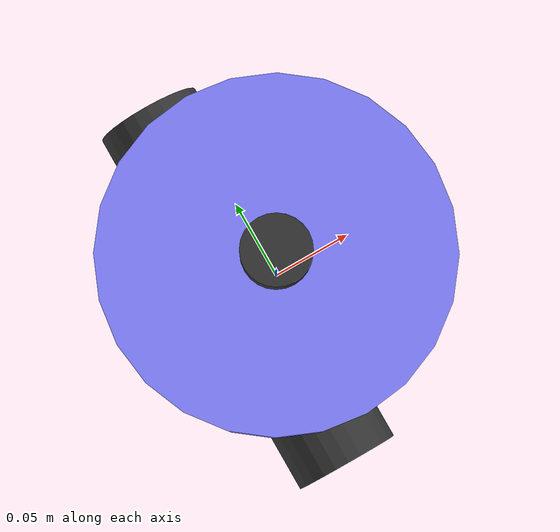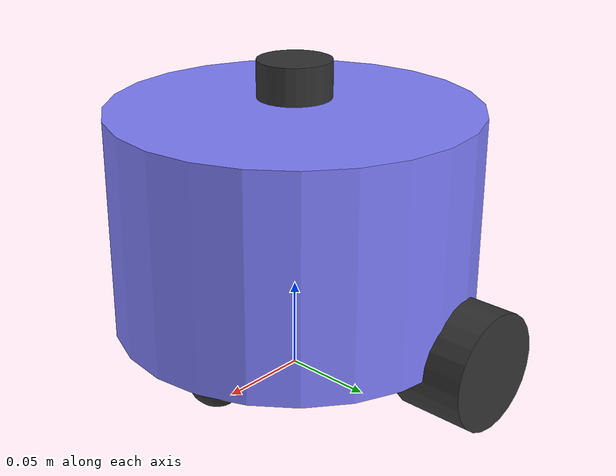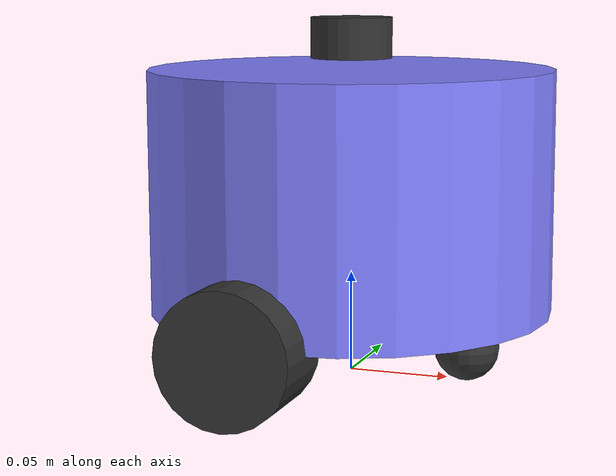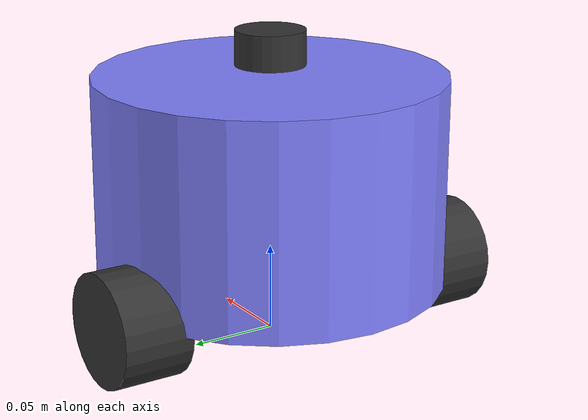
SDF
<?xml version="1.0" ?>
<sdf version="1.9">
  <model name='amazebot'>

  	<!-- Robot Footprint -->
  	<link name="base_footprint">
      <pose>0.0 0.0 0.0 0 0 0</pose>
    </link>

		<!-- base link -->
    <link name='base_link'>
      <pose>0.0 0.0 0.092 0 -0 0</pose>
      <inertial>
        <mass>0.2</mass>
        <inertia>
          <ixx>0.0122666</ixx>
          <ixy>0</ixy>
          <ixz>0</ixz>
          <iyy>0.0122666</iyy>
          <iyz>0</iyz>
          <izz>0.02</izz>
      	</inertia>
      </inertial>
      <visual name='visual_basic_link'>
        <geometry>
          <cylinder>
						<length>0.12</length>
						<radius>0.10</radius>
					</cylinder>
        </geometry>
        <material>
          <ambient>0.5 0.5 1.0 1</ambient>
          <diffuse>0.5 0.5 1.0 1</diffuse>
          <specular>0.0 0.0 1.0 1</specular>
        </material>
      </visual>
      <collision name='collision_basic_link'>
        <geometry>
					<cylinder>
						<length>0.12</length>
						<radius>0.10</radius>
					</cylinder>
        </geometry>
      </collision>
    </link>

		<!-- left wheel link -->
    <link name='left_wheel_link'>
      <pose>-0.02 0.10 0.032 -1.5707963267948966 0 0</pose>
      <inertial>
        <mass>0.2</mass>
        <inertia>
          <ixx>0.000190416666667</ixx>
          <ixy>0</ixy>
          <ixz>0</ixz>
          <iyy>0.0001904</iyy>
          <iyz>0</iyz>
          <izz>0.00036</izz>
        </inertia>
      </inertial>
      <visual name='visual_left_wheel_link'>
        <geometry>
					<cylinder>
						<length>0.04</length>
						<radius>0.032</radius>
					</cylinder>
        </geometry>
        <material>
          <ambient>0.2 0.2 0.2 1</ambient>
          <diffuse>0.2 0.2 0.2 1</diffuse>
          <specular>0.2 0.2 0.2 1</specular>
        </material>
      </visual>
      <collision name='collision_left_wheel_link'>
        <geometry>
					<cylinder>
						<length>0.04</length>
						<radius>0.032</radius>
					</cylinder>
        </geometry>
      </collision>
    </link>

		<!-- right wheel link -->
    <link name='right_wheel_link'>
      <pose>-0.02 -0.10 0.032 -1.5707963267948966 0 0</pose>
      <inertial>
        <mass>0.2</mass>
        <inertia>
          <ixx>0.000190416666667</ixx>
          <ixy>0</ixy>
          <ixz>0</ixz>
          <iyy>0.0001904</iyy>
          <iyz>0</iyz>
          <izz>0.00036</izz>
        </inertia>
      </inertial>
      <visual name='visual_right_wheel_link'>
        <geometry>
					<cylinder>
						<length>0.04</length>
						<radius>0.032</radius>
					</cylinder>
        </geometry>
        <material>
          <ambient>0.2 0.2 0.2 1</ambient>
          <diffuse>0.2 0.2 0.2 1</diffuse>
          <specular>0.2 0.2 0.2 1</specular>
        </material>
      </visual>
      <collision name='collision_right_wheel_link'>
        <geometry>
					<cylinder>
						<length>0.04</length>
						<radius>0.032</radius>
					</cylinder>
        </geometry>
      </collision>
    </link>

		<!-- caster link -->
    <link name='caster_link'>
      <pose>0.06 0.0 0.016 0 -0 0</pose>
      <inertial>
        <mass>0.02</mass>
        <inertia>
          <ixx>0.000190416666667</ixx>
          <ixy>0</ixy>
          <ixz>0</ixz>
          <iyy>0.0001904</iyy>
          <iyz>0</iyz>
          <izz>0.00036</izz>
        </inertia>
      </inertial>
      <visual name='visual_caster_links'>
        <geometry>
          <sphere>
            <radius>0.016</radius>
          </sphere>
        </geometry>
        <material>
          <ambient>0.2 0.2 0.2 1</ambient>
          <diffuse>0.2 0.2 0.2 1</diffuse>
          <specular>0.2 0.2 0.2 1</specular>
        </material>
      </visual>
      <collision name='collision_caster_link'>
        <geometry>
          <sphere>
            <radius>0.016</radius>
          </sphere>
        </geometry>
      </collision>
    </link>

		<!-- imu link -->
    <link name='imu_link'>
      <pose>0.0 0.0 0.112 0 0 0</pose>
      <inertial>
        <mass>0.1</mass>
        <inertia>
          <ixx>0.000190416666667</ixx>
          <ixy>0</ixy>
          <ixz>0</ixz>
          <iyy>0.0001904</iyy>
          <iyz>0</iyz>
          <izz>0.00036</izz>
        </inertia>
      </inertial>
      <visual name='visual_imu_link'>
        <geometry>
					<box>
						<size>0.02 0.02 0.02</size>
					</box>
        </geometry>
        <material>
          <ambient>0.2 0.2 0.2 1</ambient>
          <diffuse>0.2 0.2 0.2 1</diffuse>
          <specular>0.2 0.2 0.2 1</specular>
        </material>
      </visual>
      <collision name='collision_imu_link'>
        <geometry>
					<box>
						<size>0.02 0.02 0.02</size>
					</box>
        </geometry>
      </collision>

    	<sensor name="imu_sensor" type="imu">
    		<plugin filename="ignition-gazebo-imu-system" name="ignition::gazebo::systems::Imu">
    			<initial_orientation_as_reference>false</initial_orientation_as_reference>
    		</plugin>
    		<topic>imu</topic>
    		<always_on>true</always_on>
    		<update_rate>100.0</update_rate>
    		<visualize>true</visualize>
    		<imu>
      		<angular_velocity>
      		  <x>
      		    <noise type="gaussian">
      		      <mean>0.0</mean>
      		      <stddev>2e-4</stddev>
      		      <bias_mean>0.0000075</bias_mean>
      		      <bias_stddev>0.0000008</bias_stddev>
      		    </noise>
      		  </x>
      		  <y>
      		    <noise type="gaussian">
      		      <mean>0.0</mean>
      		      <stddev>2e-4</stddev>
      		      <bias_mean>0.0000075</bias_mean>
      		      <bias_stddev>0.0000008</bias_stddev>
      		    </noise>
      		  </y>
      		  <z>
      		    <noise type="gaussian">
      		      <mean>0.0</mean>
      		      <stddev>2e-4</stddev>
      		      <bias_mean>0.0000075</bias_mean>
      		      <bias_stddev>0.0000008</bias_stddev>
      		    </noise>
      		  </z>
      		</angular_velocity>
      		<linear_acceleration>
      		  <x>
      		    <noise type="gaussian">
      		      <mean>0.0</mean>
      		      <stddev>1.7e-2</stddev>
      		      <bias_mean>0.01</bias_mean>
      		      <bias_stddev>0.001</bias_stddev>
      		    </noise>
      		  </x>
      		  <y>
      		    <noise type="gaussian">
      		      <mean>0.0</mean>
      		      <stddev>1.7e-2</stddev>
      		      <bias_mean>0.01</bias_mean>
      		      <bias_stddev>0.001</bias_stddev>
      		    </noise>
      		  </y>
      		  <z>
      		    <noise type="gaussian">
      		      <mean>0.0</mean>
      		      <stddev>1.7e-2</stddev>
      		      <bias_mean>0.01</bias_mean>
      		      <bias_stddev>0.001</bias_stddev>
      		    </noise>
      		  </z>
      		</linear_acceleration>
    		</imu>
    	</sensor>

    </link>

		<!-- lidar link -->
		<link name='lidar_link'>
      <pose>0.0 0.0 0.167 0 0 0</pose>
      <inertial>
        <mass>0.1</mass>
        <inertia>
          <ixx>0.000190416666667</ixx>
          <ixy>0</ixy>
          <ixz>0</ixz>
          <iyy>0.0001904</iyy>
          <iyz>0</iyz>
          <izz>0.00036</izz>
        </inertia>
      </inertial>
      <visual name='visual_lidar_link'>
        <geometry>
					<cylinder>
						<length>0.02</length>
						<radius>0.02</radius>
					</cylinder>
				</geometry>
        <material>
					<ambient>0.2 0.2 0.2 1</ambient>
					<diffuse>0.2 0.2 0.2 1</diffuse>
					<specular>0.2 0.2 0.2 1</specular>
				</material>
      </visual>
      <collision name='collision_lidar_link'>
        <geometry>
					<cylinder>
						<length>0.02</length>
						<radius>0.02</radius>
					</cylinder>
				</geometry>
      </collision>

      <sensor name='lidar_sensor' type='gpu_lidar'>
        <pose>0 0 0 0 0 0</pose>
        <topic>lidar</topic>
        <update_rate>10</update_rate>
        <lidar>
          <scan>
            <horizontal>
              <samples>640</samples>
              <resolution>1</resolution>
              <min_angle>-1.396263</min_angle>
              <max_angle>1.396263</max_angle>
            </horizontal>
            <vertical>
              <samples>1</samples>
              <resolution>1</resolution>
              <min_angle>0.0</min_angle>
              <max_angle>0.0</max_angle>
            </vertical>
          </scan>
          <range>
            <min>0.08</min>
            <max>10.0</max>
            <resolution>0.01</resolution>
          </range>
        </lidar>
        <visualize>true</visualize>
      </sensor>

    </link>

		<!-- base joint -->
  	<joint name="base_joint" type="fixed">
  	  <parent>base_footprint</parent>
  	  <child>base_link</child>
  	</joint>

		<!-- left wheel joint -->
    <joint name='left_wheel_joint' type='revolute'>
      <parent>base_link</parent>
      <child>left_wheel_link</child>
			<axis>
        <xyz>0 0 1</xyz>
        <limit>
          <lower>-1.79769e+308</lower>
          <upper>1.79769e+308</upper>
        </limit>
      </axis>
    </joint>

		<!-- right wheel joint -->
    <joint name='right_wheel_joint' type='revolute'>
      <parent>base_link</parent>
      <child>right_wheel_link</child>
			<axis>
        <xyz>0 0 1</xyz>
        <limit>
          <lower>-1.79769e+308</lower>
          <upper>1.79769e+308</upper>
        </limit>
      </axis>
    </joint>

		<!-- caster joint -->
    <joint name='caster_joint' type='fixed'>
      <parent>base_link</parent>
      <child>caster_link</child>
    </joint>

		<!-- imu joint -->
    <joint name='imu_joint' type='fixed'>
      <parent>base_link</parent>
      <child>imu_link</child>
		</joint>

		<!-- lidar joint -->
		<joint name='lidar_joint' type='fixed'>
      <parent>base_link</parent>
      <child>lidar_link</child>
		</joint>

    <plugin
      filename="ignition-gazebo-diff-drive-system"
      name="ignition::gazebo::systems::DiffDrive">
      <left_joint>left_wheel_joint</left_joint>
      <right_joint>right_wheel_joint</right_joint>
      <wheel_separation>0.20</wheel_separation>
      <wheel_radius>0.032</wheel_radius>
      <odom_publish_frequency>1</odom_publish_frequency>
      <max_linear_acceleration>1</max_linear_acceleration>
      <min_linear_acceleration>-1</min_linear_acceleration>
      <max_angular_acceleration>2</max_angular_acceleration>
      <min_angular_acceleration>-2</min_angular_acceleration>
      <max_linear_velocity>1.5</max_linear_velocity>
      <min_linear_velocity>-1.5</min_linear_velocity>
      <max_angular_velocity>1</max_angular_velocity>
      <min_angular_velocity>-1</min_angular_velocity>
    </plugin>

    </model>
</sdf>
